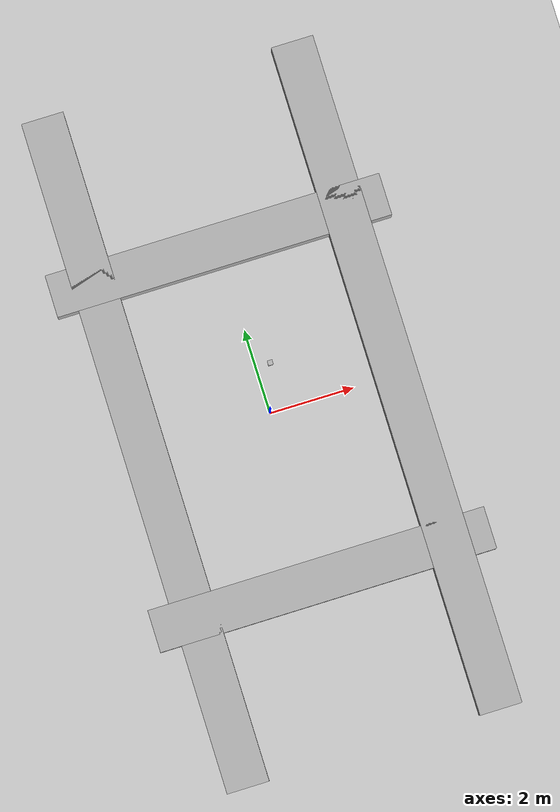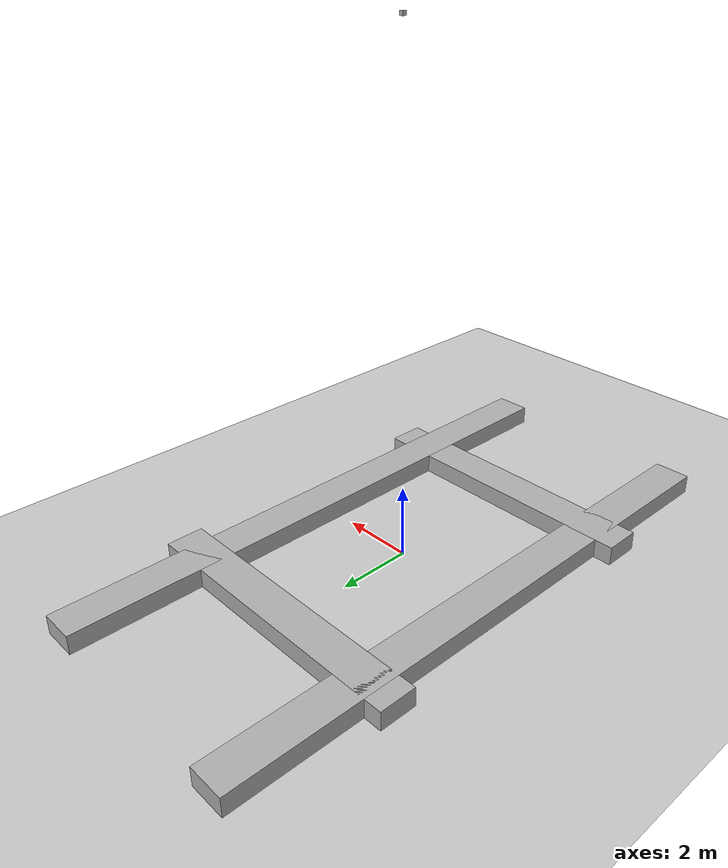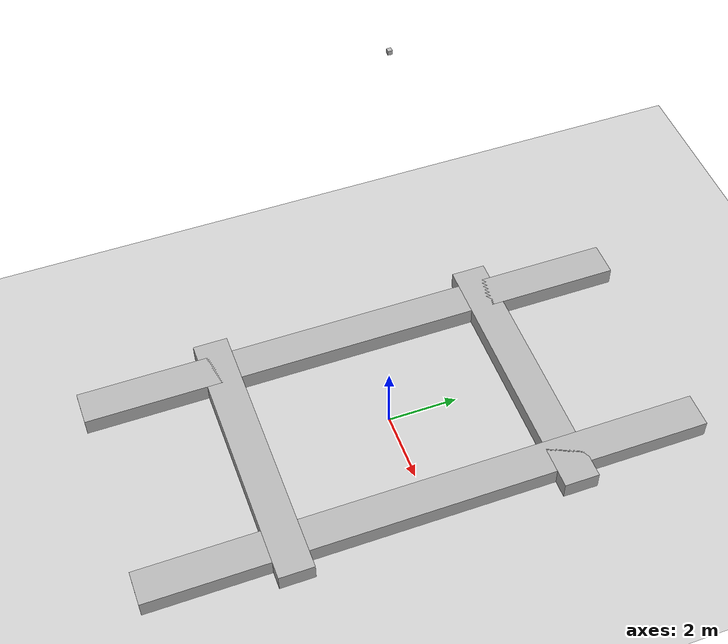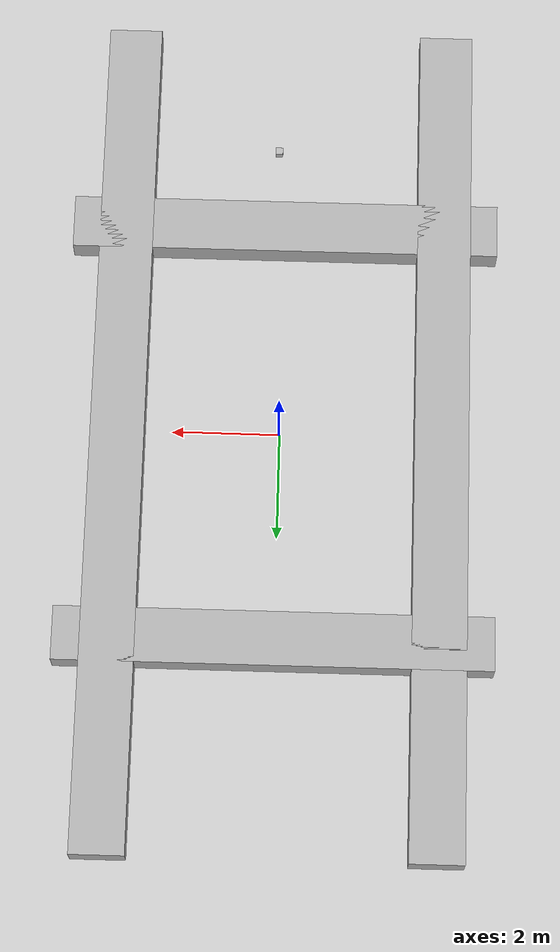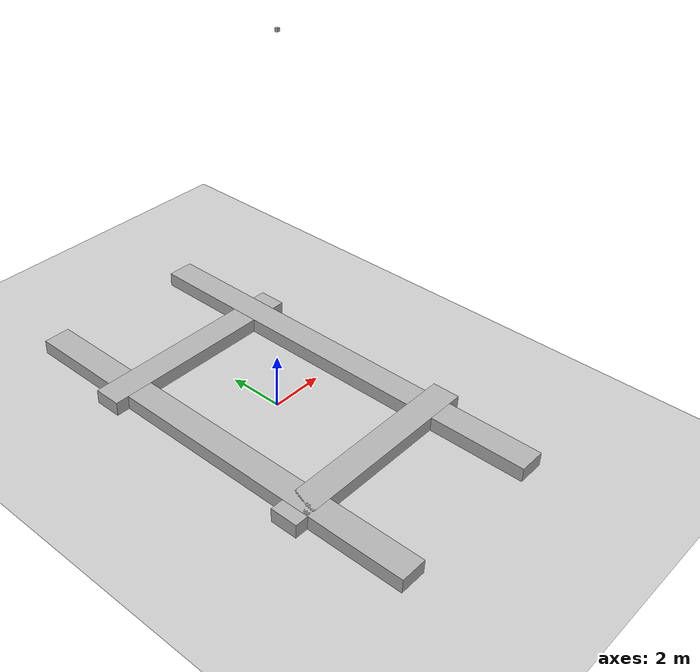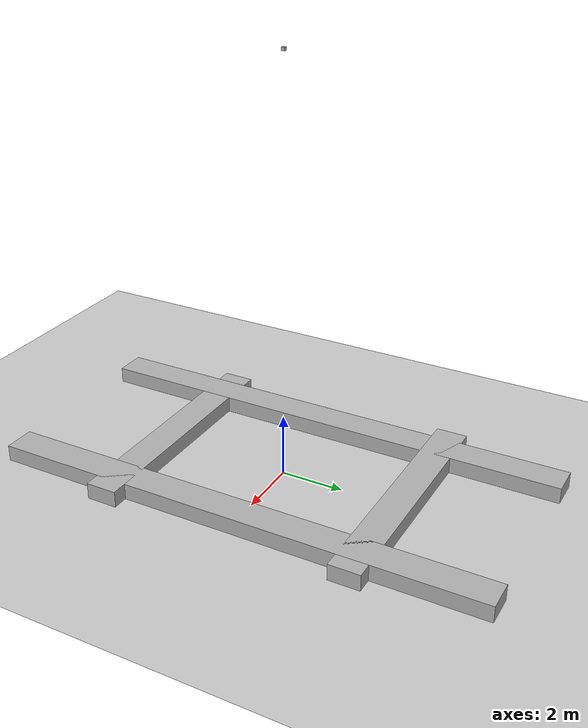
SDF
<sdf version="1.10">
 <world name="swarm_world">
  <physics name="1ms" type="ignored">
   <max_step_size>0.001</max_step_size>
   <real_time_factor>1.0</real_time_factor>
  </physics>
  <plugin filename="gz-sim-physics-system" name="gz::sim::systems::Physics"/>
  <plugin filename="gz-sim-user-commands-system" name="gz::sim::systems::UserCommands"/>
  <plugin filename="gz-sim-scene-broadcaster-system" name="gz::sim::systems::SceneBroadcaster"/>
  <plugin filename="gz-sim-sensors-system" name="gz::sim::systems::Sensors">
   <render_engine>ogre</render_engine>
  </plugin>
  <light type="directional" name="sun">
   <pose>0 0 10 0 0 0</pose>
   <diffuse>0.8 0.8 0.8 1</diffuse>
   <specular>0.2 0.2 0.2 1</specular>
   <attenuation>
    <range>1000</range>
    <constant>0.9</constant>
    <linear>0.01</linear>
    <quadratic>0.001</quadratic>
   </attenuation>
   <direction>-0.5 0.1 -0.9</direction>
  </light>
  <model name="camera">
   <pose>0 0 13 0 1.57 0</pose>
   <link name="link">
    <inertial>
     <mass>0</mass>
     <inertia><ixx>0.000166667</ixx><iyy>0.000166667</iyy><izz>0.000166667</izz></inertia>
    </inertial>
    <collision name="collision"><geometry><box><size>0.1 0.1 0.1</size></box></geometry></collision>
    <visual name="visual"><geometry><box><size>0.1 0.1 0.1</size></box></geometry></visual>
    <sensor name="camera" type="camera">
     <camera>
      <horizontal_fov>1.047</horizontal_fov>
      <image><width>1920</width><height>1080</height></image>
      <clip><near>0.1</near><far>100</far></clip>
     </camera>
     <always_on>1</always_on>
     <update_rate>60</update_rate>
     <visualize>true</visualize>
     <topic>camera_world_view</topic>
    </sensor>
   </link>
  </model>
  <model name="ground_plane">
   <static>true</static>
   <link name="link">
    <collision name="collision"><geometry><plane><normal>0 0 1</normal></plane></geometry></collision>
    <visual name="visual">
     <geometry><plane><normal>0 0 1</normal><size>1000 1000</size></plane></geometry>
     <material>
      <ambient>0.8 0.8 0.8 1</ambient>
      <diffuse>0.8 0.8 0.8 1</diffuse>
      <specular>0.8 0.8 0.8 1</specular>
     </material>
    </visual>
   </link>
  </model>
  <model name="wall1">
   <pose>3 0 0 0 0 0</pose>
   <link name="box_link">
    <inertial>
     <inertia><ixx>0.16666</ixx><ixy>0</ixy><ixz>0</ixz><iyy>0.16666</iyy><iyz>0</iyz><izz>0.16666</izz></inertia>
     <mass>1</mass>
    </inertial>
    <collision name="box_collision"><geometry><box><size>1 10 1</size></box></geometry></collision>
    <visual name="box_visual">
     <geometry><box><size>1 16 1</size></box></geometry>
     <material>
      <ambient>0.300000012 0.300000012 0.300000012 1</ambient>
      <diffuse>0.699999988 0.699999988 0.699999988 1</diffuse>
      <specular>1 1 1 1</specular>
     </material>
    </visual>
   </link>
   <static>true</static>
  </model>
  <model name="wall2">
   <pose>-3 0 0 0 0 0</pose>
   <link name="box_link">
    <inertial>
     <inertia><ixx>0.16666</ixx><ixy>0</ixy><ixz>0</ixz><iyy>0.16666</iyy><iyz>0</iyz><izz>0.16666</izz></inertia>
     <mass>1</mass>
    </inertial>
    <collision name="box_collision"><geometry><box><size>1 10 1</size></box></geometry></collision>
    <visual name="box_visual">
     <geometry><box><size>1 16 1</size></box></geometry>
     <material>
      <ambient>0.300000012 0.300000012 0.300000012 1</ambient>
      <diffuse>0.699999988 0.699999988 0.699999988 1</diffuse>
      <specular>1 1 1 1</specular>
     </material>
    </visual>
   </link>
   <static>true</static>
  </model>
  <model name="wall3">
   <pose>0 -4 0 0 0 0</pose>
   <link name="box_link">
    <inertial>
     <inertia><ixx>0.16666</ixx><ixy>0</ixy><ixz>0</ixz><iyy>0.16666</iyy><iyz>0</iyz><izz>0.16666</izz></inertia>
     <mass>1</mass>
    </inertial>
    <collision name="box_collision"><geometry><box><size>8 1 1</size></box></geometry></collision>
    <visual name="box_visual">
     <geometry><box><size>8 1 1</size></box></geometry>
     <material>
      <ambient>0.300000012 0.300000012 0.300000012 1</ambient>
      <diffuse>0.699999988 0.699999988 0.699999988 1</diffuse>
      <specular>1 1 1 1</specular>
     </material>
    </visual>
   </link>
   <static>true</static>
  </model>
  <model name="wall4">
   <pose>0 4 0 0 0 0</pose>
   <link name="box_link">
    <inertial>
     <inertia><ixx>0.16666</ixx><ixy>0</ixy><ixz>0</ixz><iyy>0.16666</iyy><iyz>0</iyz><izz>0.16666</izz></inertia>
     <mass>1</mass>
    </inertial>
    <collision name="box_collision"><geometry><box><size>8 1 1</size></box></geometry></collision>
    <visual name="box_visual">
     <geometry><box><size>8 1 1</size></box></geometry>
     <material>
      <ambient>0.300000012 0.300000012 0.300000012 1</ambient>
      <diffuse>0.699999988 0.699999988 0.699999988 1</diffuse>
      <specular>1 1 1 1</specular>
     </material>
    </visual>
   </link>
   <static>true</static>
  </model>
 </world>
</sdf>
